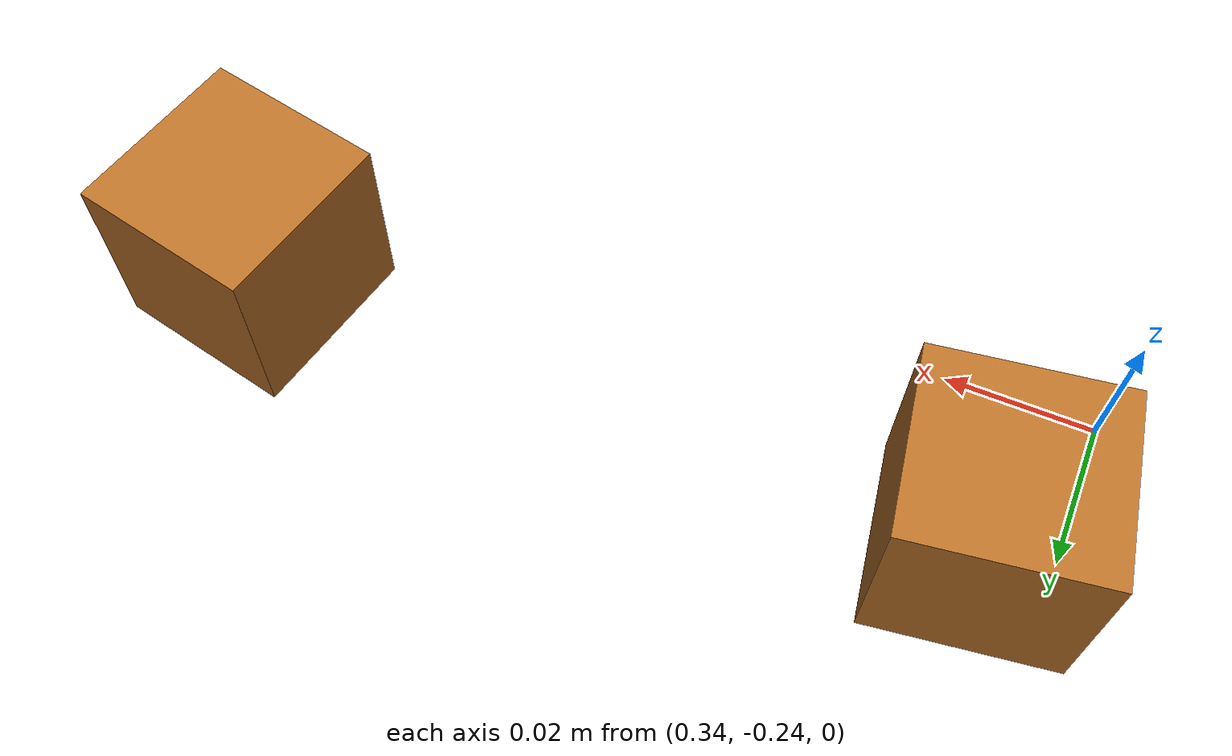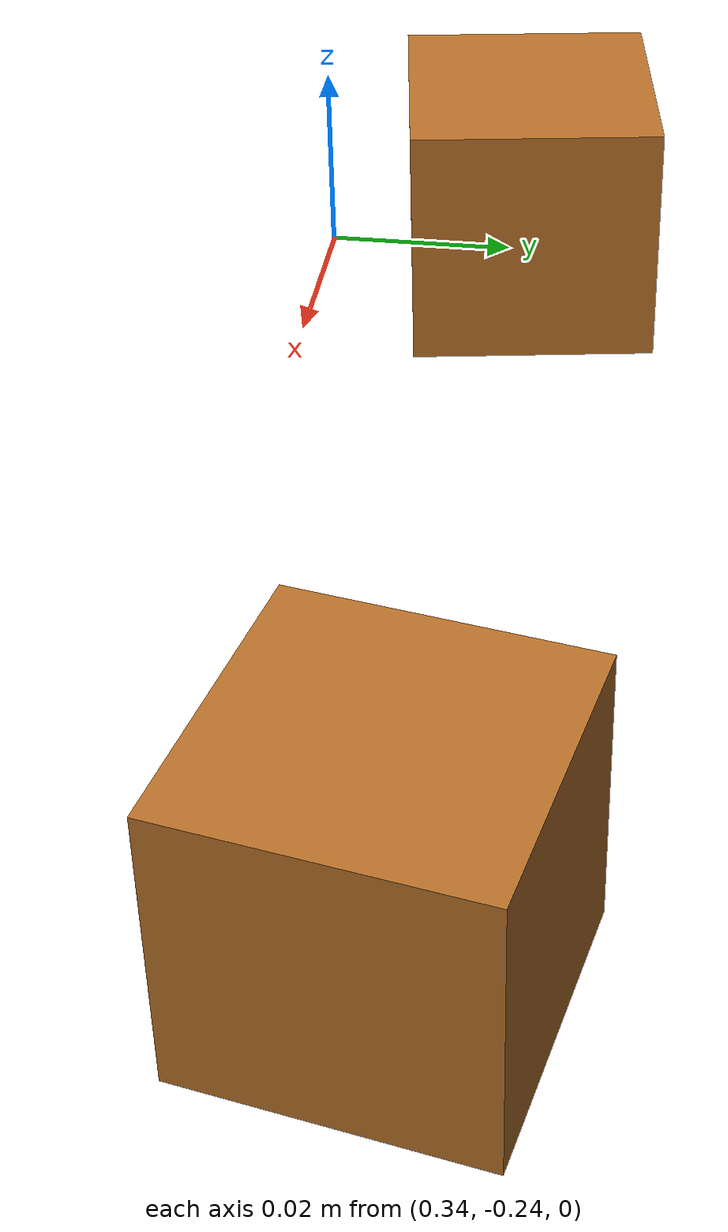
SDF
<?xml version='1.0' encoding='utf-8'?>
<sdf version="1.8">
  <world name="a0">
    <gravity>0 0 -9.81</gravity>
    <physics name="default_physics" type="ode">
      <max_step_size>0.001</max_step_size>
      <real_time_factor>1.0</real_time_factor>
      <real_time_update_rate>1000</real_time_update_rate>
    </physics>

    <scene>
      <ambient>0.6 0.6 0.6 1</ambient>
      <background>0.12 0.12 0.14 1</background>
      <shadows>false</shadows>
    </scene>

    <light name="sun" type="directional">
      <pose>0 0 3 0 0 0</pose>
      <cast_shadows>false</cast_shadows>
      <diffuse>0.8 0.8 0.8 1</diffuse>
      <specular>0.2 0.2 0.2 1</specular>
      <direction>-0.5 0.1 -1</direction>
    </light>

    <plugin filename="/tmp/stage_a2_owner_build/libworkcell_owner_physics.so" name="ignition::gazebo::systems::WorkcellOwnerPhysics"><owner_output>/tmp/stage_a2_live_identity_repaired_20261010_eba8be03/owner.jsonl</owner_output><owner_session>606b9ed756004d28ab411647dd0c82f7</owner_session><owner_record_steps>2</owner_record_steps></plugin>
    <model name="part_00">
      <pose>0.35 -0.217 0.0125 0 0 0.15</pose>
      <link name="link">
        <inertial><mass>0.020</mass><inertia><ixx>2.083333333e-6</ixx><iyy>2.083333333e-6</iyy><izz>2.083333333e-6</izz><ixy>0</ixy><ixz>0</ixz><iyz>0</iyz></inertia></inertial>
        <collision name="collision"><geometry><box><size>0.025 0.025 0.025</size></box></geometry><surface><friction><ode><mu>0.65</mu><mu2>0.65</mu2></ode></friction><contact><ode><kp>100000</kp><kd>1</kd><max_vel>0.05</max_vel><min_depth>0.0001</min_depth></ode></contact></surface></collision>
        <visual name="visual"><geometry><box><size>0.025 0.025 0.025</size></box></geometry><material><diffuse>0.72 0.44 0.16 1</diffuse></material></visual>
      </link>
    </model>
    <model name="part_01">
      <pose>0.45 -0.217 0.0125 0 0 -0.2</pose>
      <link name="link">
        <inertial><mass>0.020</mass><inertia><ixx>2.083333333e-6</ixx><iyy>2.083333333e-6</iyy><izz>2.083333333e-6</izz><ixy>0</ixy><ixz>0</ixz><iyz>0</iyz></inertia></inertial>
        <collision name="collision"><geometry><box><size>0.025 0.025 0.025</size></box></geometry><surface><friction><ode><mu>0.65</mu><mu2>0.65</mu2></ode></friction><contact><ode><kp>100000</kp><kd>1</kd><max_vel>0.05</max_vel><min_depth>0.0001</min_depth></ode></contact></surface></collision>
        <visual name="visual"><geometry><box><size>0.025 0.025 0.025</size></box></geometry><material><diffuse>0.72 0.44 0.16 1</diffuse></material></visual>
      </link>
    </model>
    </world>
</sdf>
